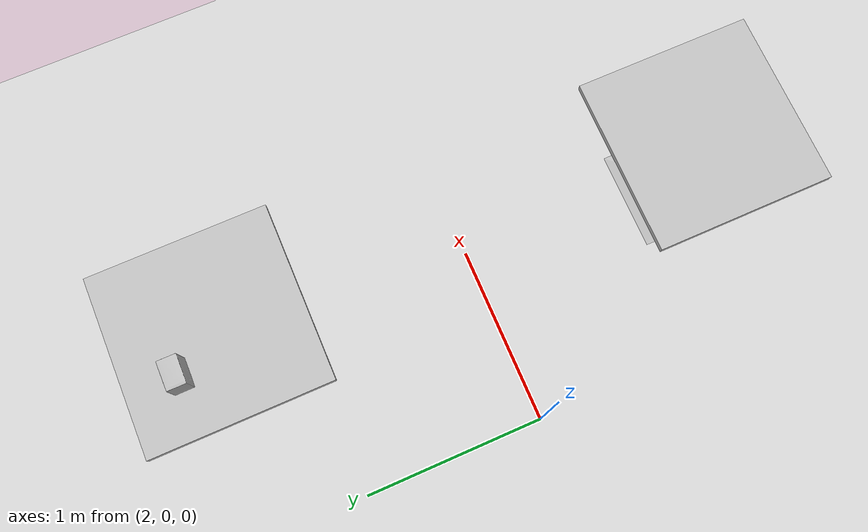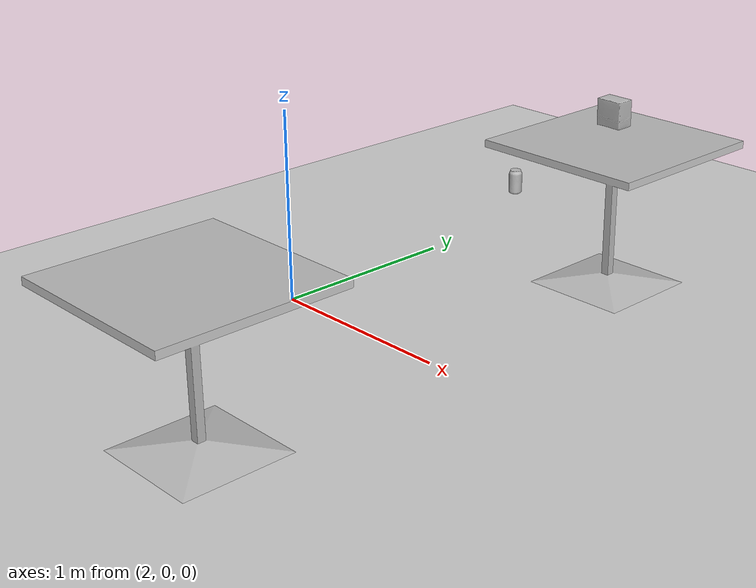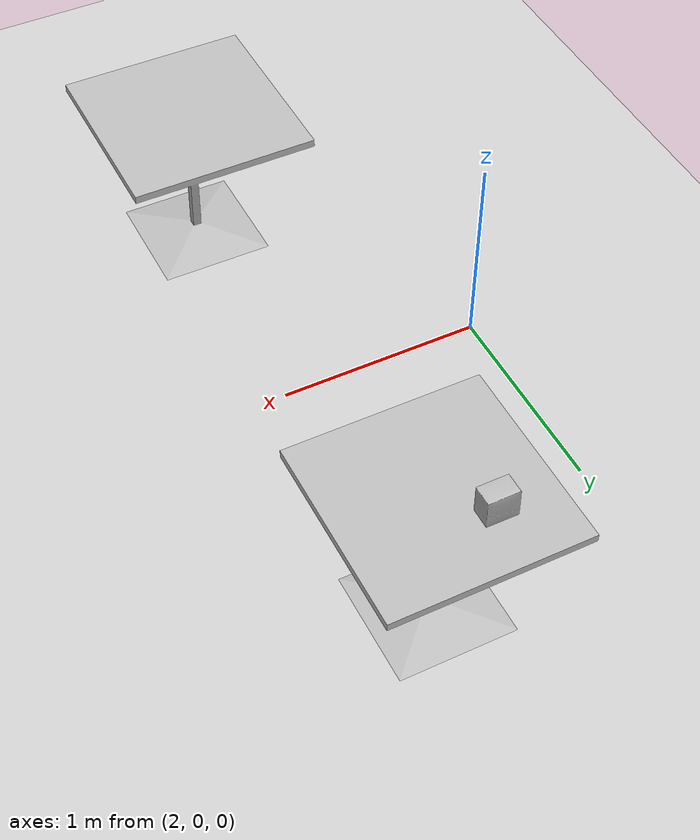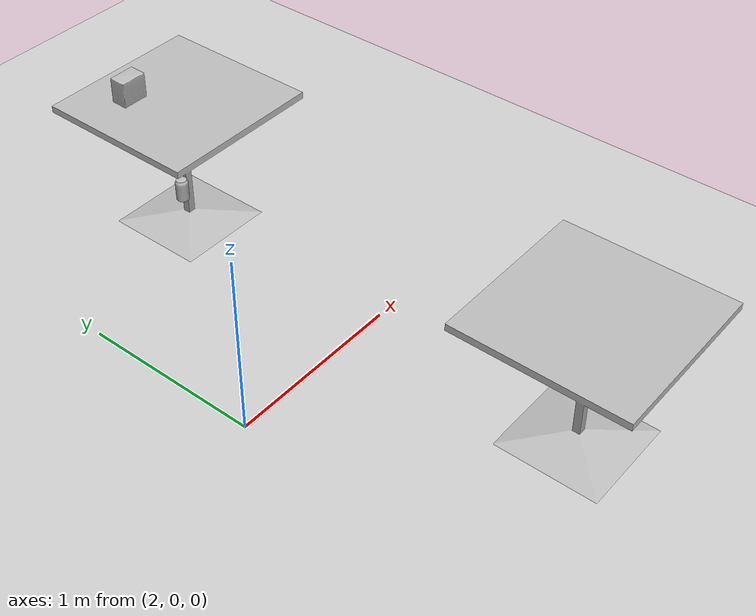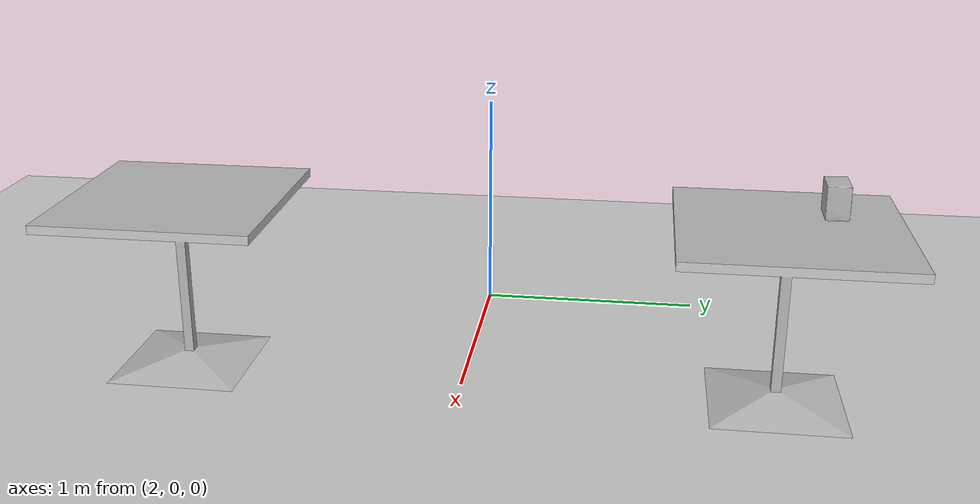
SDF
<sdf version='1.9'>
  <world name='empty'>
    <physics name='1ms' type='ignored'>
      <max_step_size>0.001</max_step_size>
      <real_time_factor>1</real_time_factor>
      <real_time_update_rate>1000</real_time_update_rate>
    </physics>
    <plugin name='ignition::gazebo::systems::Physics' filename='libignition-gazebo-physics-system.so'/>
    <plugin name='ignition::gazebo::systems::UserCommands' filename='libignition-gazebo-user-commands-system.so'/>
    <plugin name='ignition::gazebo::systems::SceneBroadcaster' filename='libignition-gazebo-scene-broadcaster-system.so'/>
    <plugin name='ignition::gazebo::systems::Contact' filename='libignition-gazebo-contact-system.so'/>
    <plugin name='ignition::gazebo::systems::Sensors' filename='libignition-gazebo-sensors-system.so'>
      <render_engine>ogre2</render_engine>
    </plugin>
    <plugin name='ignition::gazebo::systems::Imu' filename='libignition-gazebo-imu-system.so'/>
    <plugin name='ignition::gazebo::systems::NavSat' filename='libignition-gazebo-navsat-system.so'/>
    <gravity>0 0 -9.8</gravity>
    <magnetic_field>6e-06 2.3e-05 -4.2e-05</magnetic_field>
    <atmosphere type='adiabatic'/>
    <scene>
      <ambient>0.4 0.4 0.4 1</ambient>
      <background>0.7 0.7 0.7 1</background>
      <shadows>true</shadows>
    </scene>
    <model name='ground_plane'>
      <static>true</static>
      <link name='link'>
        <collision name='collision'>
          <geometry>
            <plane>
              <normal>0 0 1</normal>
              <size>100 100</size>
            </plane>
          </geometry>
          <surface>
            <friction>
              <ode/>
            </friction>
            <bounce/>
            <contact/>
          </surface>
        </collision>
        <visual name='visual'>
          <geometry>
            <plane>
              <normal>0 0 1</normal>
              <size>100 100</size>
            </plane>
          </geometry>
          <material>
            <ambient>0.8 0.8 0.8 1</ambient>
            <diffuse>0.8 0.8 0.8 1</diffuse>
            <specular>0.8 0.8 0.8 1</specular>
          </material>
        </visual>
        <pose>0 0 0 0 -0 0</pose>
        <inertial>
          <pose>0 0 0 0 -0 0</pose>
          <mass>1</mass>
          <inertia>
            <ixx>1</ixx>
            <ixy>0</ixy>
            <ixz>0</ixz>
            <iyy>1</iyy>
            <iyz>0</iyz>
            <izz>1</izz>
          </inertia>
        </inertial>
        <enable_wind>false</enable_wind>
      </link>
      <pose>0 0 0 0 -0 0</pose>
      <self_collide>false</self_collide>
    </model>
    <model name='coke_can'>
      <link name='link'>
        <inertial>
          <pose>-0.01 -0.012 0.15 0 -0 0</pose>
          <mass>0.39000000000000001</mass>
          <inertia>
            <ixx>0.00058</ixx>
            <ixy>0</ixy>
            <ixz>0</ixz>
            <iyy>0.00058</iyy>
            <iyz>0</iyz>
            <izz>0.00019000000000000001</izz>
          </inertia>
        </inertial>
        <collision name='collision'>
          <pose>0 0 -0.46 0 0 0</pose>
          <geometry>
            <mesh>
              <uri>file:///home/cemal/ros2_ws/src/llm_robot/worlds/models/coke_can/model://coke_can/meshes/coke_can.dae</uri>
            </mesh>
          </geometry>
          <surface>
            <friction>
              <ode>
                <mu>1</mu>
                <mu2>1</mu2>
              </ode>
            </friction>
            <contact>
              <ode>
                <kp>10000000</kp>
                <kd>1</kd>
                <min_depth>0.001</min_depth>
                <max_vel>0.10000000000000001</max_vel>
              </ode>
            </contact>
          </surface>
        </collision>
        <visual name='visual'>
          <pose>0 0 -0.46 0 0 0</pose>
          <geometry>
            <mesh>
              <uri>file:///home/cemal/ros2_ws/src/llm_robot/worlds/models/coke_can/model://coke_can/meshes/coke_can.dae</uri>
            </mesh>
          </geometry>
        </visual>
        <pose>0 0 0 0 -0 0</pose>
        <enable_wind>false</enable_wind>
      </link>
      <pose>2.62863 0.980536 0.771106 -0.011213 0.004029 -2.4e-05</pose>
      <static>false</static>
      <self_collide>false</self_collide>
    </model>
    <model name='The_Coffee_Bean_Tea_Leaf_KCup_Packs_Jasmine_Green_Tea_16_count'>
      <link name='link_0'>
        <visual name='visual'>
          <geometry>
            <mesh>
              <uri>file:///home/cemal/ros2_ws/src/llm_robot/worlds/models/obj1/meshes/model.obj</uri>
            </mesh>
          </geometry>
        </visual>
        <collision name='collision_0'>
          <geometry>
            <mesh>
              <uri>file:///home/cemal/ros2_ws/src/llm_robot/worlds/models/obj1/meshes/model.obj</uri>
            </mesh>
          </geometry>
        </collision>
        <pose>0 0 0 0 -0 0</pose>
        <inertial>
          <pose>0 0 0 0 -0 0</pose>
          <mass>1</mass>
          <inertia>
            <ixx>1</ixx>
            <ixy>0</ixy>
            <ixz>0</ixz>
            <iyy>1</iyy>
            <iyz>0</iyz>
            <izz>1</izz>
          </inertia>
        </inertial>
        <enable_wind>false</enable_wind>
      </link>
      <pose>2.8085 1.51251 0.774291 0.002198 -0.011502 -0.000701</pose>
      <static>false</static>
      <self_collide>false</self_collide>
    </model>
    <model name='cafe_table'>
      <static>true</static>
      <link name='link'>
        <collision name='surface'>
          <pose>0 0 0.755 0 0 0</pose>
          <geometry>
            <box>
              <size>0.913 0.913 0.04</size>
            </box>
          </geometry>
          <surface>
            <friction>
              <ode/>
            </friction>
            <bounce/>
            <contact/>
          </surface>
        </collision>
        <collision name='column'>
          <pose>0 0 0.37 0 0 0</pose>
          <geometry>
            <box>
              <size>0.042 0.042 0.74</size>
            </box>
          </geometry>
          <surface>
            <friction>
              <ode/>
            </friction>
            <bounce/>
            <contact/>
          </surface>
        </collision>
        <collision name='base'>
          <pose>0 0 0.02 0 0 0</pose>
          <geometry>
            <box>
              <size>0.56 0.56 0.04</size>
            </box>
          </geometry>
          <surface>
            <friction>
              <ode/>
            </friction>
            <bounce/>
            <contact/>
          </surface>
        </collision>
        <visual name='visual'>
          <geometry>
            <mesh>
              <uri>file:///home/cemal/ros2_ws/src/llm_robot/worlds/models/cafe_table/meshes/cafe_table.dae</uri>
            </mesh>
          </geometry>
        </visual>
        <pose>0 0 0 0 -0 0</pose>
        <inertial>
          <pose>0 0 0 0 -0 0</pose>
          <mass>1</mass>
          <inertia>
            <ixx>1</ixx>
            <ixy>0</ixy>
            <ixz>0</ixz>
            <iyy>1</iyy>
            <iyz>0</iyz>
            <izz>1</izz>
          </inertia>
        </inertial>
        <enable_wind>false</enable_wind>
      </link>
      <pose>2.9667 1.32204 0 0 -0 0</pose>
      <self_collide>false</self_collide>
    </model>
    <include>
      <uri>file:///home/cemal/ros2_ws/src/llm_robot/worlds/models/cafe_table</uri>
      <name>cafe_table_0</name>
      <pose>2.92169 -1.23365 0 0 -0 0</pose>
    </include>
    <light name='sun' type='directional'>
      <pose>0 0 10 0 -0 0</pose>
      <cast_shadows>true</cast_shadows>
      <intensity>1</intensity>
      <direction>-0.5 0.1 -0.9</direction>
      <diffuse>0.8 0.8 0.8 1</diffuse>
      <specular>0.2 0.2 0.2 1</specular>
      <attenuation>
        <range>1000</range>
        <linear>0.01</linear>
        <constant>0.90000000000000002</constant>
        <quadratic>0.001</quadratic>
      </attenuation>
      <spot>
        <inner_angle>0</inner_angle>
        <outer_angle>0</outer_angle>
        <falloff>0</falloff>
      </spot>
    </light>
  </world>
</sdf>

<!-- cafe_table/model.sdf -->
<sdf version="1.6">
  <model name="cafe_table">
    <static>true</static>
    <link name="link">
      <collision name="surface">
        <pose>0 0 0.755 0 0 0</pose>
        <geometry>
          <box>
            <size>0.913 0.913 0.04</size>
          </box>
        </geometry>
      </collision>
      <collision name="column">
        <pose>0 0 0.37 0 0 0</pose>
        <geometry>
          <box>
            <size>0.042 0.042 0.74</size>
          </box>
        </geometry>
      </collision>
      <collision name="base">
        <pose>0 0 0.02 0 0 0</pose>
        <geometry>
          <box>
            <size>0.56 0.56 0.04</size>
          </box>
        </geometry>
      </collision>
      <visual name="visual">
        <geometry>
          <mesh>
            <uri>file:///home/cemal/ros2_ws/src/llm_robot/worlds/models/cafe_table/meshes/cafe_table.dae</uri>
          </mesh>
        </geometry>
      </visual>
    </link>
  </model>
</sdf>
